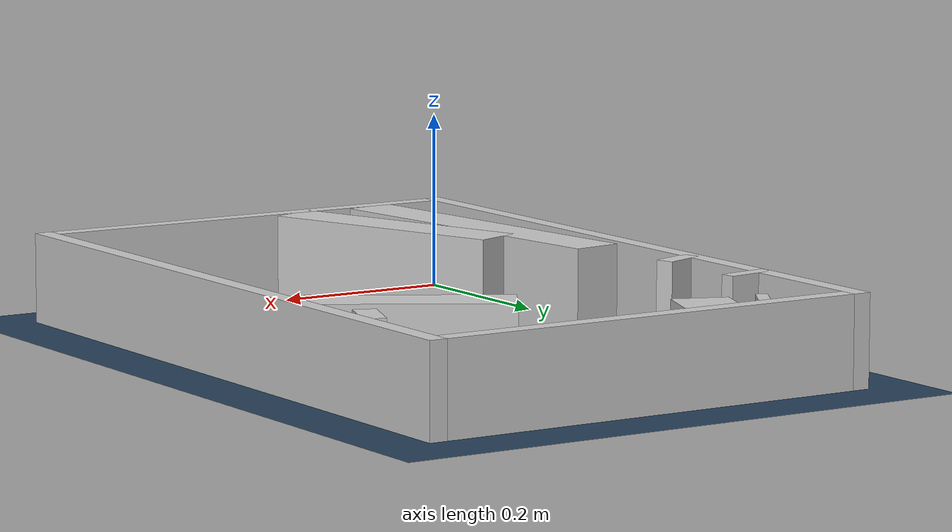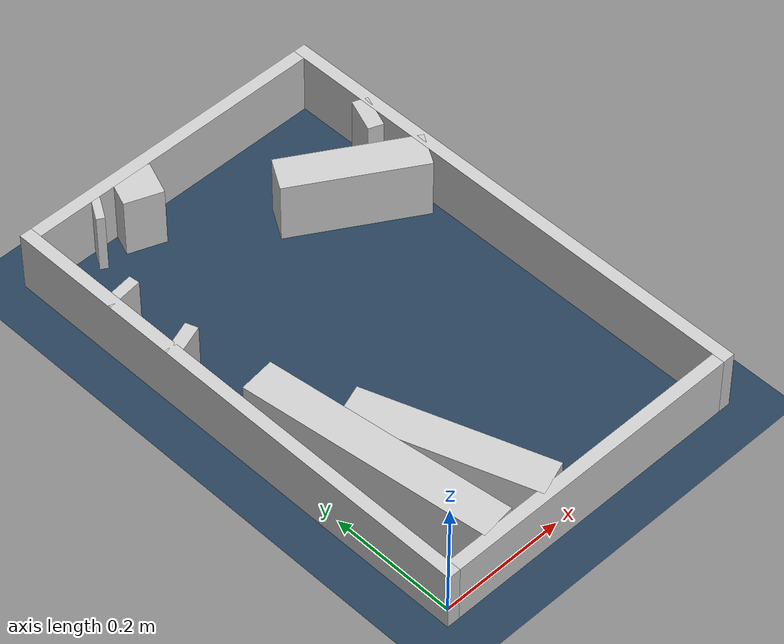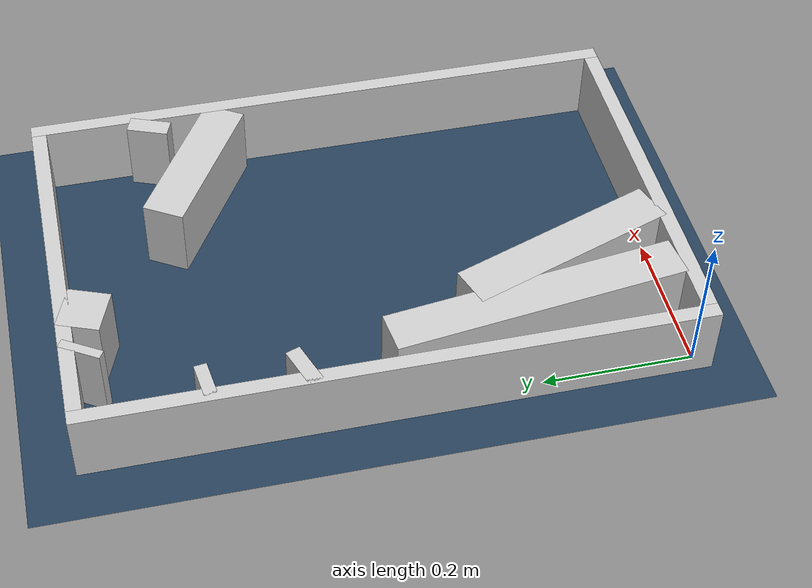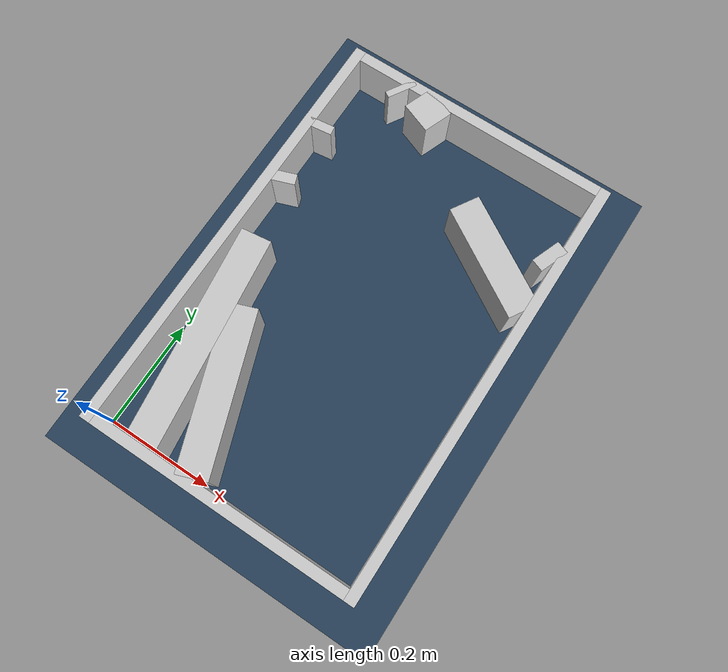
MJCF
<?xml version="1.0" ?>
<mujoco model="generated_real_template">
  <compiler angle="degree"/>
  <option timestep="0.002" integrator="implicitfast" iterations="100" cone="elliptic"/>
  <default>
    <geom density="1"/>
  </default>
  <asset>
    <texture builtin="gradient" height="3072" rgb1="0.3 0.5 0.7" rgb2="0 0 0" type="skybox" width="512"/>
    <texture builtin="checker" height="300" mark="edge" markrgb="0.8 0.8 0.8" name="groundplane" rgb1="0.2 0.3 0.4" rgb2="0.1 0.2 0.3" type="2d" width="300"/>
    <material name="groundplane" reflectance="0.2" texrepeat="5 5" texture="groundplane" texuniform="true"/>
  </asset>
  <worldbody>
    <light dir="0 0 -1" directional="true" pos="0 0 1.5"/>
    <geom name="floor" type="plane" condim="4" friction="0.5 0.005 0.001" material="groundplane" size="0 0 0.05"/>
    <body name="walls">
      <geom name="wall_boundary_left" type="box" condim="4" friction="1.0 0.005 0.0001" rgba="0.8 0.8 0.8 1" pos="-0.010000 0.387500 0.050000" euler="0 0 0.000000" size="0.010000 0.407500 0.050000"/>
      <geom name="wall_boundary_right" type="box" condim="4" friction="1.0 0.005 0.0001" rgba="0.8 0.8 0.8 1" pos="0.500000 0.387500 0.050000" euler="0 0 0.000000" size="0.010000 0.407500 0.050000"/>
      <geom name="wall_boundary_bottom" type="box" condim="4" friction="1.0 0.005 0.0001" rgba="0.8 0.8 0.8 1" pos="0.245000 -0.010000 0.050000" euler="0 0 0.000000" size="0.245000 0.010000 0.050000"/>
      <geom name="wall_boundary_top" type="box" condim="4" friction="1.0 0.005 0.0001" rgba="0.8 0.8 0.8 1" pos="0.245000 0.785000 0.050000" euler="0 0 0.000000" size="0.245000 0.010000 0.050000"/>
      <geom name="wall_inner_1_1" type="box" condim="4" friction="1.0 0.005 0.0001" rgba="0.8 0.8 0.8 1" pos="0.093658 0.767365 0.050000" euler="0 0 -31.345453" size="0.006331 0.028500 0.050000"/>
      <geom name="wall_inner_1_2" type="box" condim="4" friction="1.0 0.005 0.0001" rgba="0.8 0.8 0.8 1" pos="0.397897 0.582054 0.050000" euler="0 0 -31.345453" size="0.107843 0.028500 0.050000"/>
      <geom name="wall_inner_2_1" type="box" condim="4" friction="1.0 0.005 0.0001" rgba="0.8 0.8 0.8 1" pos="0.010226 0.504963 0.050000" euler="0 0 -70.433549" size="0.010065 0.028500 0.050000"/>
      <geom name="wall_inner_2_2" type="box" condim="4" friction="1.0 0.005 0.0001" rgba="0.8 0.8 0.8 1" pos="0.140558 0.138269 0.050000" euler="0 0 -70.433549" size="0.146743 0.028500 0.050000"/>
      <geom name="wall_inner_3_1" type="box" condim="4" friction="1.0 0.005 0.0001" rgba="0.8 0.8 0.8 1" pos="0.009336 0.624872 0.050000" euler="0 0 -82.766900" size="0.008435 0.028500 0.050000"/>
      <geom name="wall_inner_3_2" type="box" condim="4" friction="1.0 0.005 0.0001" rgba="0.8 0.8 0.8 1" pos="0.063770 0.195977 0.050000" euler="0 0 -82.766900" size="0.197549 0.028500 0.050000"/>
      <geom name="wall_inner_4_1" type="box" condim="4" friction="1.0 0.005 0.0001" rgba="0.8 0.8 0.8 1" pos="0.478550 0.634260 0.050000" euler="0 0 159.003198" size="0.012264 0.028500 0.050000"/>
      <geom name="wall_inner_4_2" type="box" condim="4" friction="1.0 0.005 0.0001" rgba="0.8 0.8 0.8 1" pos="0.157398 0.757518 0.050000" euler="0 0 159.003198" size="0.030345 0.028500 0.050000"/>
    </body>
  </worldbody>
</mujoco>
